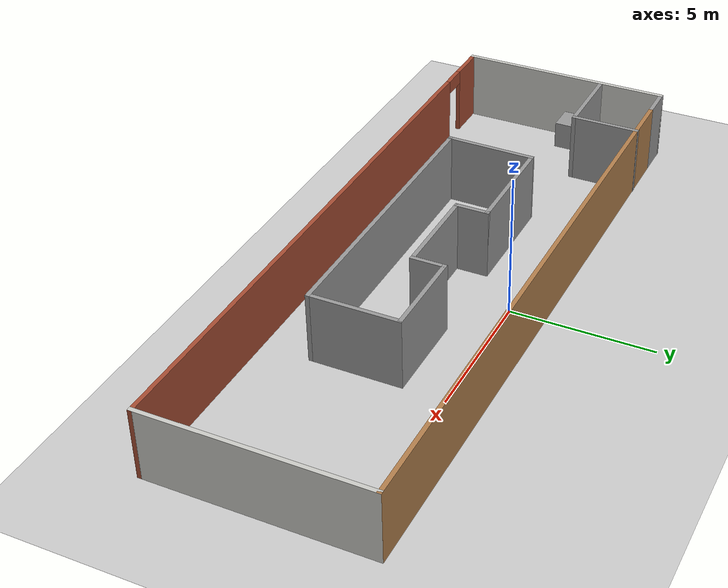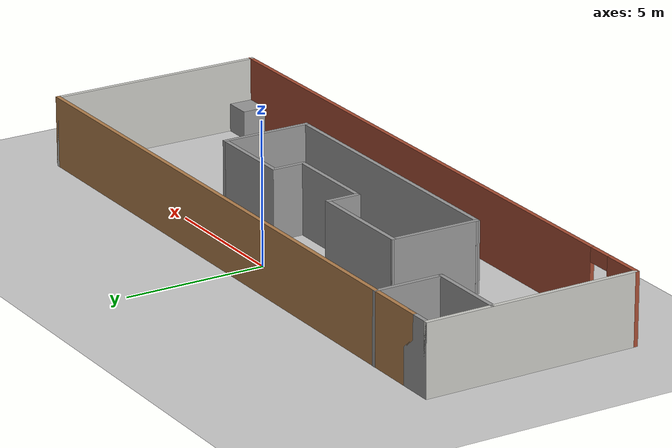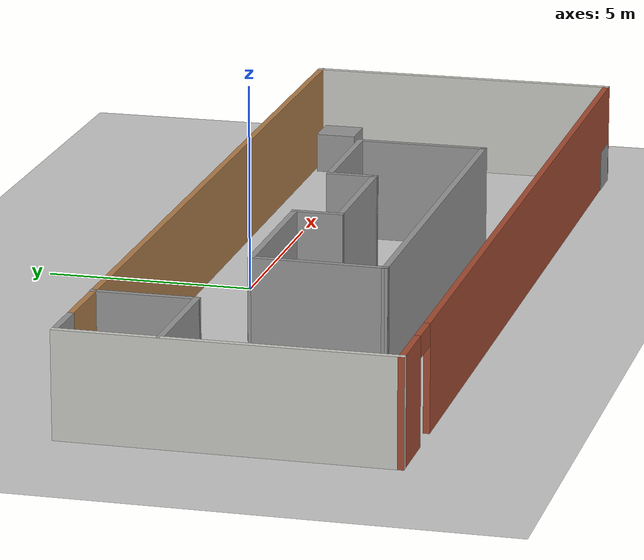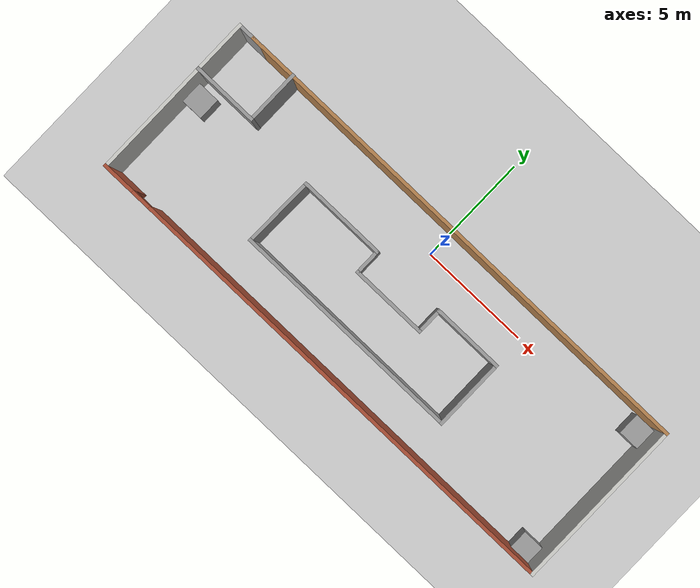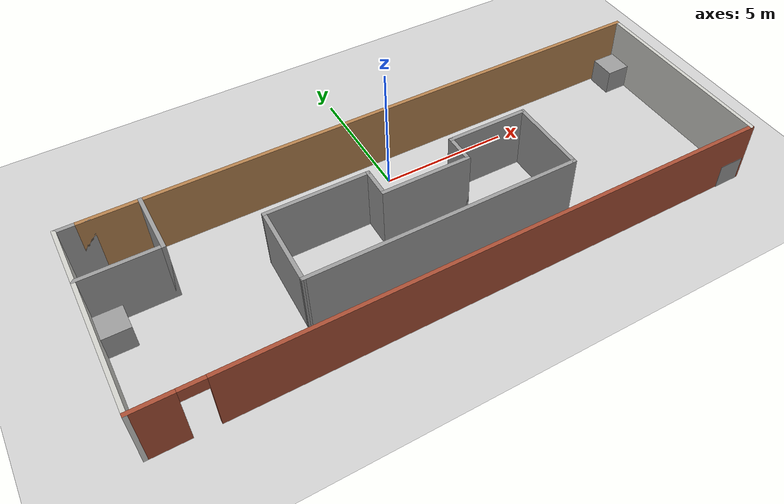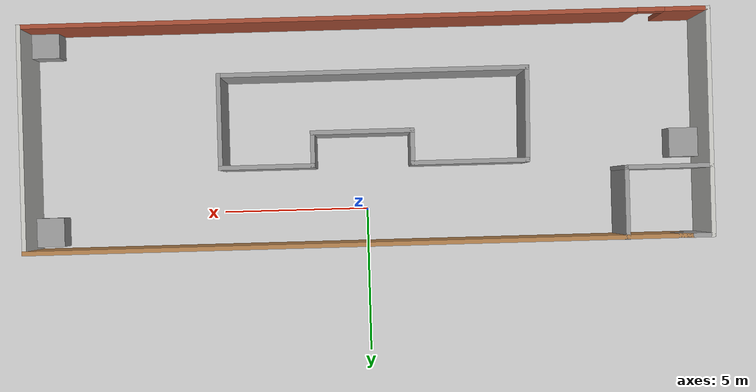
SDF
<sdf version="1.6">
 <world name="default">
  <light name="sun" type="directional">
   <pose>0 0 10 0 -0 0</pose>
   <diffuse>0.8 0.8 0.8 1</diffuse>
   <specular>0.1 0.1 0.1 1</specular>
   <attenuation>
    <range>1000</range>
    <constant>0.9</constant>
    <linear>0.01</linear>
    <quadratic>0.001</quadratic>
   </attenuation>
   <direction>-0.5 0.5 -1</direction>
  </light>
  <model name="ground_plane">
   <static>1</static>
   <link name="link">
    <collision name="collision">
     <geometry><plane><normal>0 0 1</normal><size>100 100</size></plane></geometry>
     <surface><friction><ode><mu>100</mu><mu2>50</mu2></ode></friction></surface>
    </collision>
    <visual name="visual">
     <cast_shadows>0</cast_shadows>
     <geometry><plane><normal>0 0 1</normal><size>100 100</size></plane></geometry>
     <material>
      <script><uri>file://media/materials/scripts/gazebo.material</uri><name>Gazebo/Grey</name></script>
     </material>
    </visual>
   </link>
  </model>
  <gravity>0 0 -9.8</gravity>
  <magnetic_field>6e-06 2.3e-05 -4.2e-05</magnetic_field>
  <atmosphere type="adiabatic"/>
  <physics name="default_physics" default="0" type="ode">
   <max_step_size>0.001</max_step_size>
   <real_time_factor>1</real_time_factor>
   <real_time_update_rate>1000</real_time_update_rate>
  </physics>
  <scene><ambient>0.4 0.4 0.4 1</ambient><background>0.7 0.7 0.7 1</background><shadows>1</shadows></scene>
  <spherical_coordinates>
   <surface_model>EARTH_WGS84</surface_model>
   <latitude_deg>0</latitude_deg>
   <longitude_deg>0</longitude_deg>
   <elevation>0</elevation>
   <heading_deg>0</heading_deg>
  </spherical_coordinates>
  <model name="314_room">
   <pose>-0.024155 -2.61081 0 0 -0 0</pose>
   <link name="Wall_19">
    <collision name="Wall_19_Collision">
     <geometry><box><size>3 0.15 2.5</size></box></geometry>
     <pose>0 0 1.25 0 -0 0</pose>
    </collision>
    <visual name="Wall_19_Visual">
     <pose>0 0 1.25 0 -0 0</pose>
     <geometry><box><size>3 0.15 2.5</size></box></geometry>
     <material>
      <script><uri>file://media/materials/scripts/gazebo.material</uri><name>Gazebo/Grey</name></script>
      <ambient>1 1 1 1</ambient>
     </material>
    </visual>
    <pose>-10.1198 1.45459 0 0 -0 0</pose>
   </link>
   <link name="Wall_22">
    <collision name="Wall_22_Collision">
     <geometry><box><size>2.5 0.15 2.5</size></box></geometry>
     <pose>0 0 1.25 0 -0 0</pose>
    </collision>
    <visual name="Wall_22_Visual">
     <pose>0 0 1.25 0 -0 0</pose>
     <geometry><box><size>2.5 0.15 2.5</size></box></geometry>
     <material>
      <script><uri>file://media/materials/scripts/gazebo.material</uri><name>Gazebo/Grey</name></script>
      <ambient>1 1 1 1</ambient>
     </material>
    </visual>
    <pose>-8.69481 2.62959 0 0 -0 1.5708</pose>
   </link>
   <link name="Wall_24">
    <collision name="Wall_24_Collision">
     <geometry><box><size>4 0.15 2.5</size></box></geometry>
     <pose>0 0 1.25 0 -0 0</pose>
    </collision>
    <visual name="Wall_24_Visual">
     <pose>0 0 1.25 0 -0 0</pose>
     <geometry><box><size>4 0.15 2.5</size></box></geometry>
     <material>
      <script><uri>file://media/materials/scripts/gazebo.material</uri><name>Gazebo/Grey</name></script>
      <ambient>1 1 1 1</ambient>
     </material>
    </visual>
    <pose>-3.47516 1.10879 0 0 -0 0</pose>
   </link>
   <link name="Wall_25">
    <collision name="Wall_25_Collision">
     <geometry><box><size>1.25 0.15 2.5</size></box></geometry>
     <pose>0 0 1.25 0 -0 0</pose>
    </collision>
    <visual name="Wall_25_Visual">
     <pose>0 0 1.25 0 -0 0</pose>
     <geometry><box><size>1.25 0.15 2.5</size></box></geometry>
     <material>
      <script><uri>file://media/materials/scripts/gazebo.material</uri><name>Gazebo/Grey</name></script>
      <ambient>1 1 1 1</ambient>
     </material>
    </visual>
    <pose>-1.55016 0.558789 0 0 0 -1.5708</pose>
   </link>
   <link name="Wall_26">
    <collision name="Wall_26_Collision">
     <geometry><box><size>3.5 0.15 2.5</size></box></geometry>
     <pose>0 0 1.25 0 -0 0</pose>
    </collision>
    <visual name="Wall_26_Visual">
     <pose>0 0 1.25 0 -0 0</pose>
     <geometry><box><size>3.5 0.15 2.5</size></box></geometry>
     <material>
      <script><uri>file://media/materials/scripts/gazebo.material</uri><name>Gazebo/Grey</name></script>
      <ambient>1 1 1 1</ambient>
     </material>
    </visual>
    <pose>0.12484 0.008789 0 0 -0 0</pose>
   </link>
   <link name="Wall_27">
    <collision name="Wall_27_Collision">
     <geometry><box><size>1.25 0.15 2.5</size></box></geometry>
     <pose>0 0 1.25 0 -0 0</pose>
    </collision>
    <visual name="Wall_27_Visual">
     <pose>0 0 1.25 0 -0 0</pose>
     <geometry><box><size>1.25 0.15 2.5</size></box></geometry>
     <material>
      <script><uri>file://media/materials/scripts/gazebo.material</uri><name>Gazebo/Grey</name></script>
      <ambient>1 1 1 1</ambient>
     </material>
    </visual>
    <pose>1.79984 0.558789 0 0 -0 1.5708</pose>
   </link>
   <link name="Wall_28">
    <collision name="Wall_28_Collision">
     <geometry><box><size>3.25 0.15 2.5</size></box></geometry>
     <pose>0 0 1.25 0 -0 0</pose>
    </collision>
    <visual name="Wall_28_Visual">
     <pose>0 0 1.25 0 -0 0</pose>
     <geometry><box><size>3.25 0.15 2.5</size></box></geometry>
     <material>
      <script><uri>file://media/materials/scripts/gazebo.material</uri><name>Gazebo/Grey</name></script>
      <ambient>1 1 1 1</ambient>
     </material>
    </visual>
    <pose>3.34984 1.10879 0 0 -0 0</pose>
   </link>
   <link name="Wall_29">
    <collision name="Wall_29_Collision">
     <geometry><box><size>3.25 0.15 2.5</size></box></geometry>
     <pose>0 0 1.25 0 -0 0</pose>
    </collision>
    <visual name="Wall_29_Visual">
     <pose>0 0 1.25 0 -0 0</pose>
     <geometry><box><size>3.25 0.15 2.5</size></box></geometry>
     <material>
      <script><uri>file://media/materials/scripts/gazebo.material</uri><name>Gazebo/Grey</name></script>
      <ambient>1 1 1 1</ambient>
     </material>
    </visual>
    <pose>4.89984 -0.441211 0 0 0 -1.5708</pose>
   </link>
   <link name="Wall_30">
    <collision name="Wall_30_Collision">
     <geometry><box><size>10.5 0.15 2.5</size></box></geometry>
     <pose>0 0 1.25 0 -0 0</pose>
    </collision>
    <visual name="Wall_30_Visual">
     <pose>0 0 1.25 0 -0 0</pose>
     <geometry><box><size>10.5 0.15 2.5</size></box></geometry>
     <material>
      <script><uri>file://media/materials/scripts/gazebo.material</uri><name>Gazebo/Grey</name></script>
      <ambient>1 1 1 1</ambient>
     </material>
    </visual>
    <pose>-0.27516 -1.99121 0 0 -0 3.14159</pose>
   </link>
   <link name="Wall_33">
    <collision name="Wall_33_Collision">
     <geometry><box><size>3.2504 0.15 2.5</size></box></geometry>
     <pose>0 0 1.25 0 -0 0</pose>
    </collision>
    <visual name="Wall_33_Visual">
     <pose>0 0 1.25 0 -0 0</pose>
     <geometry><box><size>3.2504 0.15 2.5</size></box></geometry>
     <material>
      <script><uri>file://media/materials/scripts/gazebo.material</uri><name>Gazebo/Grey</name></script>
      <ambient>1 1 1 1</ambient>
     </material>
    </visual>
    <pose>-5.42516 -0.441211 0 0 -0 1.55467</pose>
   </link>
   <link name="Wall_5">
    <collision name="Wall_5_Collision">
     <geometry><box><size>22.5 0.15 2.5</size></box></geometry>
     <pose>0 0 1.25 0 -0 0</pose>
    </collision>
    <visual name="Wall_5_Visual">
     <pose>0 0 1.25 0 -0 0</pose>
     <geometry><box><size>22.5 0.15 2.5</size></box></geometry>
     <material>
      <script><uri>file://media/materials/scripts/gazebo.material</uri><name>Gazebo/Wood</name></script>
      <ambient>1 1 1 1</ambient>
     </material>
    </visual>
    <pose>0.375 3.79541 0 0 -0 0</pose>
   </link>
   <link name="Wall_6">
    <collision name="Wall_6_Collision">
     <geometry><box><size>7.75 0.15 2.5</size></box></geometry>
     <pose>0 0 1.25 0 -0 0</pose>
    </collision>
    <visual name="Wall_6_Visual">
     <pose>0 0 1.25 0 -0 0</pose>
     <geometry><box><size>7.75 0.15 2.5</size></box></geometry>
     <material>
      <script><uri>file://media/materials/scripts/gazebo.material</uri><name>Gazebo/CeilingTiled</name></script>
      <ambient>1 1 1 1</ambient>
     </material>
    </visual>
    <pose>11.55 -0.004591 0 0 0 -1.5708</pose>
   </link>
   <link name="Wall_7">
    <pose>0 -3.80459 0 0 -0 3.14159</pose>
    <visual name="Wall_7_Visual_0">
     <pose>-1.2094 0 1.25 0 -0 0</pose>
     <geometry><box><size>20.8312 0.15 2.5</size></box></geometry>
     <material>
      <script><uri>file://media/materials/scripts/gazebo.material</uri><name>Gazebo/Bricks</name></script>
      <ambient>1 1 1 1</ambient>
     </material>
    </visual>
    <collision name="Wall_7_Collision_0">
     <geometry><box><size>20.8312 0.15 2.5</size></box></geometry>
     <pose>-1.2094 0 1.25 0 -0 0</pose>
    </collision>
    <visual name="Wall_7_Visual_1">
     <pose>10.8656 0 1.25 0 -0 0</pose>
     <geometry><box><size>1.51881 0.15 2.5</size></box></geometry>
     <material>
      <script><uri>file://media/materials/scripts/gazebo.material</uri><name>Gazebo/Bricks</name></script>
      <ambient>1 1 1 1</ambient>
     </material>
    </visual>
    <collision name="Wall_7_Collision_1">
     <geometry><box><size>1.51881 0.15 2.5</size></box></geometry>
     <pose>10.8656 0 1.25 0 -0 0</pose>
    </collision>
    <visual name="Wall_7_Visual_2">
     <pose>9.65619 0 2.25 0 -0 0</pose>
     <geometry><box><size>0.9 0.15 0.5</size></box></geometry>
     <material>
      <script><uri>file://media/materials/scripts/gazebo.material</uri><name>Gazebo/Bricks</name></script>
      <ambient>1 1 1 1</ambient>
     </material>
    </visual>
    <collision name="Wall_7_Collision_2">
     <geometry><box><size>0.9 0.15 0.5</size></box></geometry>
     <pose>9.65619 0 2.25 0 -0 0</pose>
    </collision>
   </link>
   <link name="Wall_8">
    <collision name="Wall_8_Collision">
     <geometry><box><size>7.75 0.15 2.5</size></box></geometry>
     <pose>0 0 1.25 0 -0 0</pose>
    </collision>
    <visual name="Wall_8_Visual">
     <pose>0 0 1.25 0 -0 0</pose>
     <geometry><box><size>7.75 0.15 2.5</size></box></geometry>
     <material>
      <script><uri>file://media/materials/scripts/gazebo.material</uri><name>Gazebo/CeilingTiled</name></script>
      <ambient>1 1 1 1</ambient>
     </material>
    </visual>
    <pose>-11.55 -0.004591 0 0 -0 1.5708</pose>
   </link>
   <link name="Wall_9">
    <collision name="Wall_9_Collision">
     <geometry><box><size>1.25 0.15 2.5</size></box></geometry>
     <pose>0 0 1.25 0 -0 0</pose>
    </collision>
    <visual name="Wall_9_Visual">
     <pose>0 0 1.25 0 -0 0</pose>
     <geometry><box><size>1.25 0.15 2.5</size></box></geometry>
     <material>
      <script><uri>file://media/materials/scripts/gazebo.material</uri><name>Gazebo/Grey</name></script>
      <ambient>1 1 1 1</ambient>
     </material>
    </visual>
    <pose>-11 3.79541 0 0 -0 0</pose>
   </link>
   <static>1</static>
  </model>
  <model name="test">
   <link name="link_2">
    <pose>7.33333 3.02188 0 0 -0 0</pose>
    <inertial>
     <mass>1</mass>
     <inertia>
      <ixx>0.166667</ixx>
      <ixy>0</ixy>
      <ixz>0</ixz>
      <iyy>0.166667</iyy>
      <iyz>0</iyz>
      <izz>0.166667</izz>
     </inertia>
    </inertial>
    <visual name="visual">
     <geometry><box><size>1 1 1</size></box></geometry>
     <material>
      <lighting>1</lighting>
      <script><uri>file://media/materials/scripts/gazebo.material</uri><name>Gazebo/Grey</name></script>
      <ambient>0.3 0.3 0.3 1</ambient>
      <diffuse>0.7 0.7 0.7 1</diffuse>
      <specular>0.01 0.01 0.01 1</specular>
      <emissive>0 0 0 1</emissive>
     </material>
    </visual>
    <collision name="collision">
     <geometry><box><size>1 1 1</size></box></geometry>
     <surface>
      <friction>
       <ode><mu>1</mu><mu2>1</mu2><fdir1>0 0 0</fdir1><slip1>0</slip1><slip2>0</slip2></ode>
       <torsional>
        <coefficient>1</coefficient>
        <patch_radius>0</patch_radius>
        <surface_radius>0</surface_radius>
        <use_patch_radius>1</use_patch_radius>
        <ode><slip>0</slip></ode>
       </torsional>
      </friction>
      <bounce><restitution_coefficient>0</restitution_coefficient><threshold>1e+06</threshold></bounce>
      <contact>
       <collide_without_contact>0</collide_without_contact>
       <collide_without_contact_bitmask>1</collide_without_contact_bitmask>
       <collide_bitmask>1</collide_bitmask>
       <ode>
        <soft_cfm>0</soft_cfm>
        <soft_erp>0.2</soft_erp>
        <kp>1e+13</kp>
        <kd>1</kd>
        <max_vel>0.01</max_vel>
        <min_depth>0</min_depth>
       </ode>
       <bullet>
        <split_impulse>1</split_impulse>
        <split_impulse_penetration_threshold>-0.01</split_impulse_penetration_threshold>
        <soft_cfm>0</soft_cfm>
        <soft_erp>0.2</soft_erp>
        <kp>1e+13</kp>
        <kd>1</kd>
       </bullet>
      </contact>
     </surface>
    </collision>
   </link>
   <link name="link_3">
    <pose>-14.6667 0.489062 0 0 -0 0</pose>
    <inertial>
     <mass>1</mass>
     <inertia>
      <ixx>0.166667</ixx>
      <ixy>0</ixy>
      <ixz>0</ixz>
      <iyy>0.166667</iyy>
      <iyz>0</iyz>
      <izz>0.166667</izz>
     </inertia>
    </inertial>
    <visual name="visual">
     <geometry><box><size>1 1 1</size></box></geometry>
     <material>
      <lighting>1</lighting>
      <script><uri>file://media/materials/scripts/gazebo.material</uri><name>Gazebo/Grey</name></script>
      <ambient>0.3 0.3 0.3 1</ambient>
      <diffuse>0.7 0.7 0.7 1</diffuse>
      <specular>0.01 0.01 0.01 1</specular>
      <emissive>0 0 0 1</emissive>
     </material>
    </visual>
    <collision name="collision">
     <geometry><box><size>1 1 1</size></box></geometry>
     <surface>
      <friction>
       <ode><mu>1</mu><mu2>1</mu2><fdir1>0 0 0</fdir1><slip1>0</slip1><slip2>0</slip2></ode>
       <torsional>
        <coefficient>1</coefficient>
        <patch_radius>0</patch_radius>
        <surface_radius>0</surface_radius>
        <use_patch_radius>1</use_patch_radius>
        <ode><slip>0</slip></ode>
       </torsional>
      </friction>
      <bounce><restitution_coefficient>0</restitution_coefficient><threshold>1e+06</threshold></bounce>
      <contact>
       <collide_without_contact>0</collide_without_contact>
       <collide_without_contact_bitmask>1</collide_without_contact_bitmask>
       <collide_bitmask>1</collide_bitmask>
       <ode>
        <soft_cfm>0</soft_cfm>
        <soft_erp>0.2</soft_erp>
        <kp>1e+13</kp>
        <kd>1</kd>
        <max_vel>0.01</max_vel>
        <min_depth>0</min_depth>
       </ode>
       <bullet>
        <split_impulse>1</split_impulse>
        <split_impulse_penetration_threshold>-0.01</split_impulse_penetration_threshold>
        <soft_cfm>0</soft_cfm>
        <soft_erp>0.2</soft_erp>
        <kp>1e+13</kp>
        <kd>1</kd>
       </bullet>
      </contact>
     </surface>
    </collision>
   </link>
   <link name="link_4">
    <pose>7.33333 -3.51094 0 0 -0 0</pose>
    <inertial>
     <mass>1</mass>
     <inertia>
      <ixx>0.166667</ixx>
      <ixy>0</ixy>
      <ixz>0</ixz>
      <iyy>0.166667</iyy>
      <iyz>0</iyz>
      <izz>0.166667</izz>
     </inertia>
    </inertial>
    <visual name="visual">
     <geometry><box><size>1 1 1</size></box></geometry>
     <material>
      <lighting>1</lighting>
      <script><uri>file://media/materials/scripts/gazebo.material</uri><name>Gazebo/Grey</name></script>
      <ambient>0.3 0.3 0.3 1</ambient>
      <diffuse>0.7 0.7 0.7 1</diffuse>
      <specular>0.01 0.01 0.01 1</specular>
      <emissive>0 0 0 1</emissive>
     </material>
    </visual>
    <collision name="collision">
     <geometry><box><size>1 1 1</size></box></geometry>
     <surface>
      <friction>
       <ode><mu>1</mu><mu2>1</mu2><fdir1>0 0 0</fdir1><slip1>0</slip1><slip2>0</slip2></ode>
       <torsional>
        <coefficient>1</coefficient>
        <patch_radius>0</patch_radius>
        <surface_radius>0</surface_radius>
        <use_patch_radius>1</use_patch_radius>
        <ode><slip>0</slip></ode>
       </torsional>
      </friction>
      <bounce><restitution_coefficient>0</restitution_coefficient><threshold>1e+06</threshold></bounce>
      <contact>
       <collide_without_contact>0</collide_without_contact>
       <collide_without_contact_bitmask>1</collide_without_contact_bitmask>
       <collide_bitmask>1</collide_bitmask>
       <ode>
        <soft_cfm>0</soft_cfm>
        <soft_erp>0.2</soft_erp>
        <kp>1e+13</kp>
        <kd>1</kd>
        <max_vel>0.01</max_vel>
        <min_depth>0</min_depth>
       </ode>
       <bullet>
        <split_impulse>1</split_impulse>
        <split_impulse_penetration_threshold>-0.01</split_impulse_penetration_threshold>
        <soft_cfm>0</soft_cfm>
        <soft_erp>0.2</soft_erp>
        <kp>1e+13</kp>
        <kd>1</kd>
       </bullet>
      </contact>
     </surface>
    </collision>
   </link>
   <static>0</static>
   <pose>3.66667 -2.48906 0.5 0 -0 0</pose>
  </model>
 </world>
</sdf>
